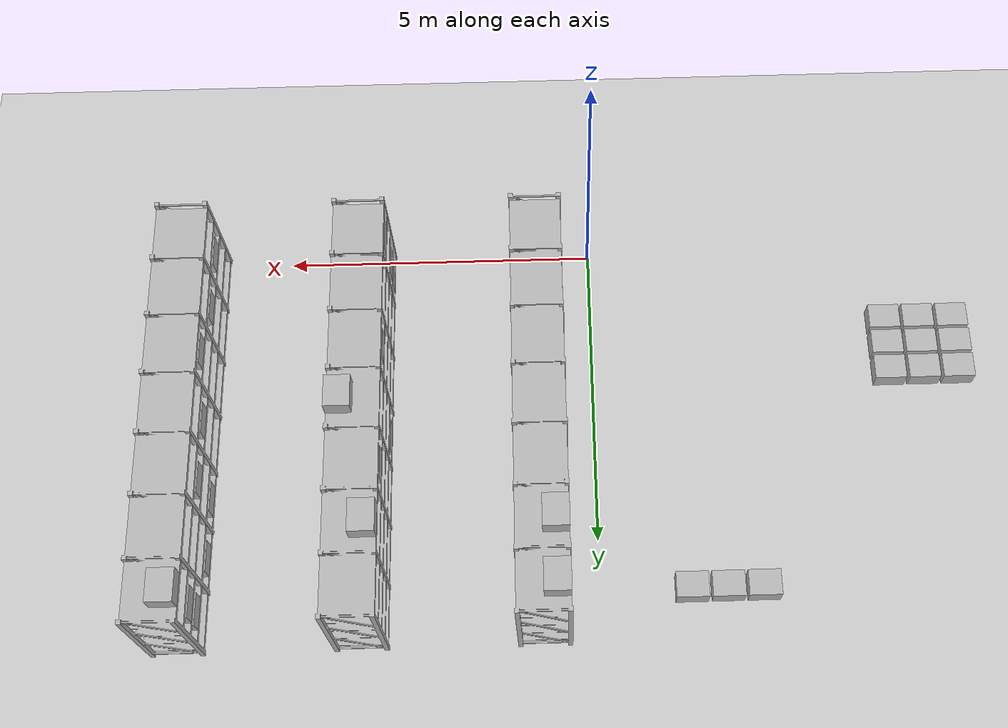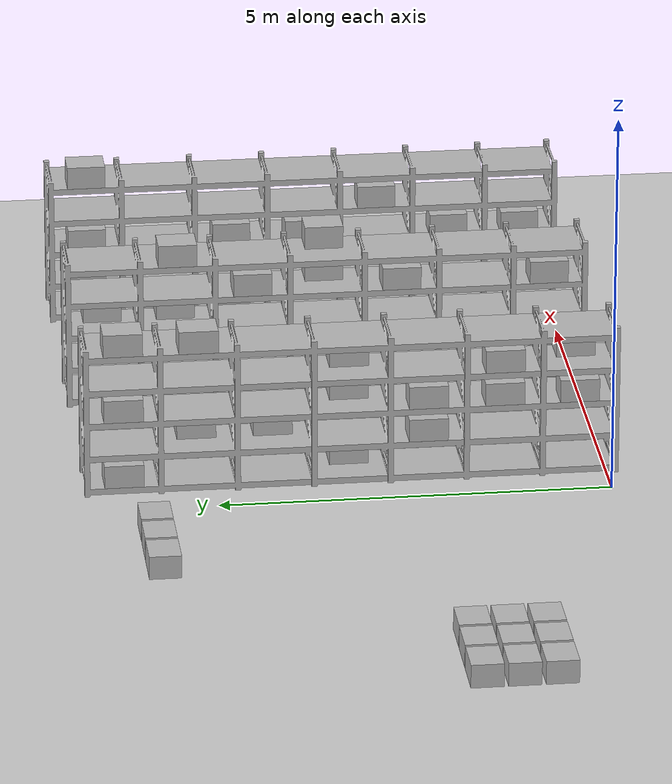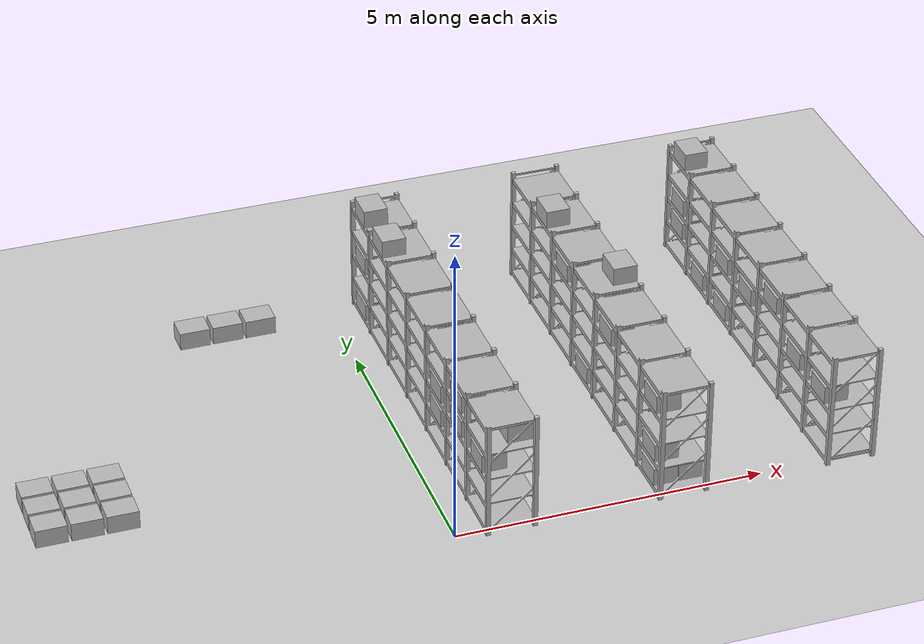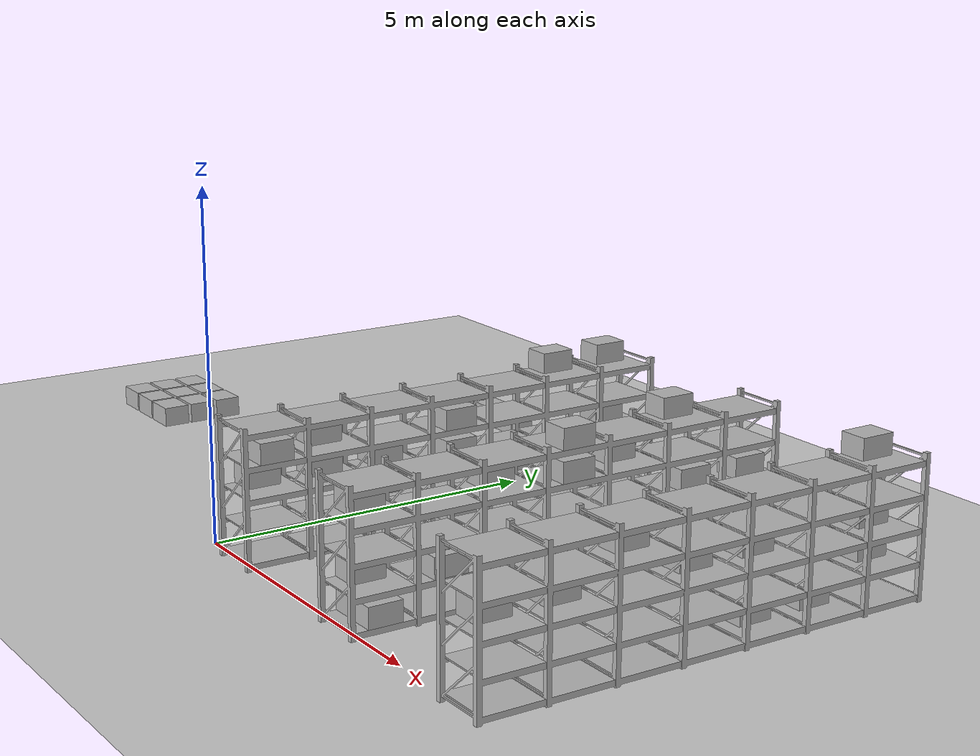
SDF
<sdf version="1.6">
 <world name="default">
  <model name="ground_plane">
   <static>1</static>
   <link name="link">
    <collision name="collision">
     <geometry><plane><normal>0 0 1</normal><size>100 100</size></plane></geometry>
     <surface><friction><ode><mu>100</mu><mu2>50</mu2></ode></friction></surface>
    </collision>
    <visual name="visual">
     <cast_shadows>0</cast_shadows>
     <geometry><plane><normal>0 0 1</normal><size>100 100</size></plane></geometry>
     <material>
      <script><uri>file://media/materials/scripts/gazebo.material</uri><name>Gazebo/Grey</name></script>
     </material>
    </visual>
   </link>
  </model>
  <include>
   <name>rack_A2_1</name>
   <uri>model://warehouse_rack_5lvl_7bay</uri>
   <pose>0.8599 3.2523 0 0 0 0</pose>
  </include>
  <model name="box_A_033">
   <pose>0.6549 0.3555 1.152 0 0 0</pose>
   <link name="link">
    <inertial>
     <mass>2.0</mass>
     <inertia><ixx>0.05667</ixx><iyy>0.04167</iyy><izz>0.06833</izz><ixy>0</ixy><ixz>0</ixz><iyz>0</iyz></inertia>
    </inertial>
    <collision name="collision">
     <geometry><box><size>0.4 0.5 0.3</size></box></geometry>
     <surface><friction><ode><mu>1.0</mu><mu2>1.0</mu2></ode></friction></surface>
    </collision>
    <visual name="visual">
     <cast_shadows>0</cast_shadows>
     <geometry><box><size>0.4 0.5 0.3</size></box></geometry>
     <material>
      <script>
       <uri>model://labeled_boxes/materials/scripts</uri>
       <uri>model://labeled_boxes/materials/textures</uri>
       <name>LabeledBox/A-033</name>
      </script>
     </material>
    </visual>
   </link>
  </model>
  <model name="box_A_034">
   <pose>1.0649 0.3555 1.602 0 0 0</pose>
   <link name="link">
    <inertial>
     <mass>2.0</mass>
     <inertia><ixx>0.05667</ixx><iyy>0.04167</iyy><izz>0.06833</izz><ixy>0</ixy><ixz>0</ixz><iyz>0</iyz></inertia>
    </inertial>
    <collision name="collision">
     <geometry><box><size>0.4 0.5 0.3</size></box></geometry>
     <surface><friction><ode><mu>1.0</mu><mu2>1.0</mu2></ode></friction></surface>
    </collision>
    <visual name="visual">
     <cast_shadows>0</cast_shadows>
     <geometry><box><size>0.4 0.5 0.3</size></box></geometry>
     <material>
      <script>
       <uri>model://labeled_boxes/materials/scripts</uri>
       <uri>model://labeled_boxes/materials/textures</uri>
       <name>LabeledBox/A-034</name>
      </script>
     </material>
    </visual>
   </link>
  </model>
  <model name="box_A_035">
   <pose>0.6549 1.3094 1.152 0 0 0</pose>
   <link name="link">
    <inertial>
     <mass>2.0</mass>
     <inertia><ixx>0.05667</ixx><iyy>0.04167</iyy><izz>0.06833</izz><ixy>0</ixy><ixz>0</ixz><iyz>0</iyz></inertia>
    </inertial>
    <collision name="collision">
     <geometry><box><size>0.4 0.5 0.3</size></box></geometry>
     <surface><friction><ode><mu>1.0</mu><mu2>1.0</mu2></ode></friction></surface>
    </collision>
    <visual name="visual">
     <cast_shadows>0</cast_shadows>
     <geometry><box><size>0.4 0.5 0.3</size></box></geometry>
     <material>
      <script>
       <uri>model://labeled_boxes/materials/scripts</uri>
       <uri>model://labeled_boxes/materials/textures</uri>
       <name>LabeledBox/A-035</name>
      </script>
     </material>
    </visual>
   </link>
  </model>
  <model name="box_A_036">
   <pose>0.6549 1.3094 1.602 0 0 0</pose>
   <link name="link">
    <inertial>
     <mass>2.0</mass>
     <inertia><ixx>0.05667</ixx><iyy>0.04167</iyy><izz>0.06833</izz><ixy>0</ixy><ixz>0</ixz><iyz>0</iyz></inertia>
    </inertial>
    <collision name="collision">
     <geometry><box><size>0.4 0.5 0.3</size></box></geometry>
     <surface><friction><ode><mu>1.0</mu><mu2>1.0</mu2></ode></friction></surface>
    </collision>
    <visual name="visual">
     <cast_shadows>0</cast_shadows>
     <geometry><box><size>0.4 0.5 0.3</size></box></geometry>
     <material>
      <script>
       <uri>model://labeled_boxes/materials/scripts</uri>
       <uri>model://labeled_boxes/materials/textures</uri>
       <name>LabeledBox/A-036</name>
      </script>
     </material>
    </visual>
   </link>
  </model>
  <model name="box_A_037">
   <pose>0.6549 2.2809 0.702 0 0 0</pose>
   <link name="link">
    <inertial>
     <mass>2.0</mass>
     <inertia><ixx>0.05667</ixx><iyy>0.04167</iyy><izz>0.06833</izz><ixy>0</ixy><ixz>0</ixz><iyz>0</iyz></inertia>
    </inertial>
    <collision name="collision">
     <geometry><box><size>0.4 0.5 0.3</size></box></geometry>
     <surface><friction><ode><mu>1.0</mu><mu2>1.0</mu2></ode></friction></surface>
    </collision>
    <visual name="visual">
     <cast_shadows>0</cast_shadows>
     <geometry><box><size>0.4 0.5 0.3</size></box></geometry>
     <material>
      <script>
       <uri>model://labeled_boxes/materials/scripts</uri>
       <uri>model://labeled_boxes/materials/textures</uri>
       <name>LabeledBox/A-037</name>
      </script>
     </material>
    </visual>
   </link>
  </model>
  <model name="box_A_038">
   <pose>0.6549 2.2809 1.152 0 0 0</pose>
   <link name="link">
    <inertial>
     <mass>2.0</mass>
     <inertia><ixx>0.05667</ixx><iyy>0.04167</iyy><izz>0.06833</izz><ixy>0</ixy><ixz>0</ixz><iyz>0</iyz></inertia>
    </inertial>
    <collision name="collision">
     <geometry><box><size>0.4 0.5 0.3</size></box></geometry>
     <surface><friction><ode><mu>1.0</mu><mu2>1.0</mu2></ode></friction></surface>
    </collision>
    <visual name="visual">
     <cast_shadows>0</cast_shadows>
     <geometry><box><size>0.4 0.5 0.3</size></box></geometry>
     <material>
      <script>
       <uri>model://labeled_boxes/materials/scripts</uri>
       <uri>model://labeled_boxes/materials/textures</uri>
       <name>LabeledBox/A-038</name>
      </script>
     </material>
    </visual>
   </link>
  </model>
  <model name="box_A_039">
   <pose>1.0649 3.2523 0.252 0 0 0</pose>
   <link name="link">
    <inertial>
     <mass>2.0</mass>
     <inertia><ixx>0.05667</ixx><iyy>0.04167</iyy><izz>0.06833</izz><ixy>0</ixy><ixz>0</ixz><iyz>0</iyz></inertia>
    </inertial>
    <collision name="collision">
     <geometry><box><size>0.4 0.5 0.3</size></box></geometry>
     <surface><friction><ode><mu>1.0</mu><mu2>1.0</mu2></ode></friction></surface>
    </collision>
    <visual name="visual">
     <cast_shadows>0</cast_shadows>
     <geometry><box><size>0.4 0.5 0.3</size></box></geometry>
     <material>
      <script>
       <uri>model://labeled_boxes/materials/scripts</uri>
       <uri>model://labeled_boxes/materials/textures</uri>
       <name>LabeledBox/A-039</name>
      </script>
     </material>
    </visual>
   </link>
  </model>
  <model name="box_A_040">
   <pose>1.0649 3.2523 1.152 0 0 0</pose>
   <link name="link">
    <inertial>
     <mass>2.0</mass>
     <inertia><ixx>0.05667</ixx><iyy>0.04167</iyy><izz>0.06833</izz><ixy>0</ixy><ixz>0</ixz><iyz>0</iyz></inertia>
    </inertial>
    <collision name="collision">
     <geometry><box><size>0.4 0.5 0.3</size></box></geometry>
     <surface><friction><ode><mu>1.0</mu><mu2>1.0</mu2></ode></friction></surface>
    </collision>
    <visual name="visual">
     <cast_shadows>0</cast_shadows>
     <geometry><box><size>0.4 0.5 0.3</size></box></geometry>
     <material>
      <script>
       <uri>model://labeled_boxes/materials/scripts</uri>
       <uri>model://labeled_boxes/materials/textures</uri>
       <name>LabeledBox/A-040</name>
      </script>
     </material>
    </visual>
   </link>
  </model>
  <model name="box_A_041">
   <pose>1.0649 3.2523 1.602 0 0 0</pose>
   <link name="link">
    <inertial>
     <mass>2.0</mass>
     <inertia><ixx>0.05667</ixx><iyy>0.04167</iyy><izz>0.06833</izz><ixy>0</ixy><ixz>0</ixz><iyz>0</iyz></inertia>
    </inertial>
    <collision name="collision">
     <geometry><box><size>0.4 0.5 0.3</size></box></geometry>
     <surface><friction><ode><mu>1.0</mu><mu2>1.0</mu2></ode></friction></surface>
    </collision>
    <visual name="visual">
     <cast_shadows>0</cast_shadows>
     <geometry><box><size>0.4 0.5 0.3</size></box></geometry>
     <material>
      <script>
       <uri>model://labeled_boxes/materials/scripts</uri>
       <uri>model://labeled_boxes/materials/textures</uri>
       <name>LabeledBox/A-041</name>
      </script>
     </material>
    </visual>
   </link>
  </model>
  <model name="box_A_042">
   <pose>1.0649 4.2237 0.702 0 0 0</pose>
   <link name="link">
    <inertial>
     <mass>2.0</mass>
     <inertia><ixx>0.05667</ixx><iyy>0.04167</iyy><izz>0.06833</izz><ixy>0</ixy><ixz>0</ixz><iyz>0</iyz></inertia>
    </inertial>
    <collision name="collision">
     <geometry><box><size>0.4 0.5 0.3</size></box></geometry>
     <surface><friction><ode><mu>1.0</mu><mu2>1.0</mu2></ode></friction></surface>
    </collision>
    <visual name="visual">
     <cast_shadows>0</cast_shadows>
     <geometry><box><size>0.4 0.5 0.3</size></box></geometry>
     <material>
      <script>
       <uri>model://labeled_boxes/materials/scripts</uri>
       <uri>model://labeled_boxes/materials/textures</uri>
       <name>LabeledBox/A-042</name>
      </script>
     </material>
    </visual>
   </link>
  </model>
  <model name="box_A_043">
   <pose>1.0649 5.1951 0.702 0 0 0</pose>
   <link name="link">
    <inertial>
     <mass>2.0</mass>
     <inertia><ixx>0.05667</ixx><iyy>0.04167</iyy><izz>0.06833</izz><ixy>0</ixy><ixz>0</ixz><iyz>0</iyz></inertia>
    </inertial>
    <collision name="collision">
     <geometry><box><size>0.4 0.5 0.3</size></box></geometry>
     <surface><friction><ode><mu>1.0</mu><mu2>1.0</mu2></ode></friction></surface>
    </collision>
    <visual name="visual">
     <cast_shadows>0</cast_shadows>
     <geometry><box><size>0.4 0.5 0.3</size></box></geometry>
     <material>
      <script>
       <uri>model://labeled_boxes/materials/scripts</uri>
       <uri>model://labeled_boxes/materials/textures</uri>
       <name>LabeledBox/A-043</name>
      </script>
     </material>
    </visual>
   </link>
  </model>
  <model name="box_A_044">
   <pose>0.6549 5.1951 2.052 0 0 0</pose>
   <link name="link">
    <inertial>
     <mass>2.0</mass>
     <inertia><ixx>0.05667</ixx><iyy>0.04167</iyy><izz>0.06833</izz><ixy>0</ixy><ixz>0</ixz><iyz>0</iyz></inertia>
    </inertial>
    <collision name="collision">
     <geometry><box><size>0.4 0.5 0.3</size></box></geometry>
     <surface><friction><ode><mu>1.0</mu><mu2>1.0</mu2></ode></friction></surface>
    </collision>
    <visual name="visual">
     <cast_shadows>0</cast_shadows>
     <geometry><box><size>0.4 0.5 0.3</size></box></geometry>
     <material>
      <script>
       <uri>model://labeled_boxes/materials/scripts</uri>
       <uri>model://labeled_boxes/materials/textures</uri>
       <name>LabeledBox/A-044</name>
      </script>
     </material>
    </visual>
   </link>
  </model>
  <model name="box_A_045">
   <pose>0.6549 6.1491 0.252 0 0 0</pose>
   <link name="link">
    <inertial>
     <mass>2.0</mass>
     <inertia><ixx>0.05667</ixx><iyy>0.04167</iyy><izz>0.06833</izz><ixy>0</ixy><ixz>0</ixz><iyz>0</iyz></inertia>
    </inertial>
    <collision name="collision">
     <geometry><box><size>0.4 0.5 0.3</size></box></geometry>
     <surface><friction><ode><mu>1.0</mu><mu2>1.0</mu2></ode></friction></surface>
    </collision>
    <visual name="visual">
     <cast_shadows>0</cast_shadows>
     <geometry><box><size>0.4 0.5 0.3</size></box></geometry>
     <material>
      <script>
       <uri>model://labeled_boxes/materials/scripts</uri>
       <uri>model://labeled_boxes/materials/textures</uri>
       <name>LabeledBox/A-045</name>
      </script>
     </material>
    </visual>
   </link>
  </model>
  <model name="box_A_046">
   <pose>0.6549 6.1491 1.152 0 0 0</pose>
   <link name="link">
    <inertial>
     <mass>2.0</mass>
     <inertia><ixx>0.05667</ixx><iyy>0.04167</iyy><izz>0.06833</izz><ixy>0</ixy><ixz>0</ixz><iyz>0</iyz></inertia>
    </inertial>
    <collision name="collision">
     <geometry><box><size>0.4 0.5 0.3</size></box></geometry>
     <surface><friction><ode><mu>1.0</mu><mu2>1.0</mu2></ode></friction></surface>
    </collision>
    <visual name="visual">
     <cast_shadows>0</cast_shadows>
     <geometry><box><size>0.4 0.5 0.3</size></box></geometry>
     <material>
      <script>
       <uri>model://labeled_boxes/materials/scripts</uri>
       <uri>model://labeled_boxes/materials/textures</uri>
       <name>LabeledBox/A-046</name>
      </script>
     </material>
    </visual>
   </link>
  </model>
  <model name="box_A_047">
   <pose>0.6549 6.1491 2.052 0 0 0</pose>
   <link name="link">
    <inertial>
     <mass>2.0</mass>
     <inertia><ixx>0.05667</ixx><iyy>0.04167</iyy><izz>0.06833</izz><ixy>0</ixy><ixz>0</ixz><iyz>0</iyz></inertia>
    </inertial>
    <collision name="collision">
     <geometry><box><size>0.4 0.5 0.3</size></box></geometry>
     <surface><friction><ode><mu>1.0</mu><mu2>1.0</mu2></ode></friction></surface>
    </collision>
    <visual name="visual">
     <cast_shadows>0</cast_shadows>
     <geometry><box><size>0.4 0.5 0.3</size></box></geometry>
     <material>
      <script>
       <uri>model://labeled_boxes/materials/scripts</uri>
       <uri>model://labeled_boxes/materials/textures</uri>
       <name>LabeledBox/A-047</name>
      </script>
     </material>
    </visual>
   </link>
  </model>
  <include>
   <name>rack_A3_1</name>
   <uri>model://warehouse_rack_5lvl_7bay</uri>
   <pose>3.6599 3.2523 0 0 0 0</pose>
  </include>
  <model name="box_A_064">
   <pose>3.4549 0.3555 0.252 0 0 0</pose>
   <link name="link">
    <inertial>
     <mass>2.0</mass>
     <inertia><ixx>0.05667</ixx><iyy>0.04167</iyy><izz>0.06833</izz><ixy>0</ixy><ixz>0</ixz><iyz>0</iyz></inertia>
    </inertial>
    <collision name="collision">
     <geometry><box><size>0.4 0.5 0.3</size></box></geometry>
     <surface><friction><ode><mu>1.0</mu><mu2>1.0</mu2></ode></friction></surface>
    </collision>
    <visual name="visual">
     <cast_shadows>0</cast_shadows>
     <geometry><box><size>0.4 0.5 0.3</size></box></geometry>
     <material>
      <script>
       <uri>model://labeled_boxes/materials/scripts</uri>
       <uri>model://labeled_boxes/materials/textures</uri>
       <name>LabeledBox/A-064</name>
      </script>
     </material>
    </visual>
   </link>
  </model>
  <model name="box_A_065">
   <pose>3.8649 0.3555 0.252 0 0 0</pose>
   <link name="link">
    <inertial>
     <mass>2.0</mass>
     <inertia><ixx>0.05667</ixx><iyy>0.04167</iyy><izz>0.06833</izz><ixy>0</ixy><ixz>0</ixz><iyz>0</iyz></inertia>
    </inertial>
    <collision name="collision">
     <geometry><box><size>0.4 0.5 0.3</size></box></geometry>
     <surface><friction><ode><mu>1.0</mu><mu2>1.0</mu2></ode></friction></surface>
    </collision>
    <visual name="visual">
     <cast_shadows>0</cast_shadows>
     <geometry><box><size>0.4 0.5 0.3</size></box></geometry>
     <material>
      <script>
       <uri>model://labeled_boxes/materials/scripts</uri>
       <uri>model://labeled_boxes/materials/textures</uri>
       <name>LabeledBox/A-065</name>
      </script>
     </material>
    </visual>
   </link>
  </model>
  <model name="box_A_066">
   <pose>3.4549 0.3555 0.702 0 0 0</pose>
   <link name="link">
    <inertial>
     <mass>2.0</mass>
     <inertia><ixx>0.05667</ixx><iyy>0.04167</iyy><izz>0.06833</izz><ixy>0</ixy><ixz>0</ixz><iyz>0</iyz></inertia>
    </inertial>
    <collision name="collision">
     <geometry><box><size>0.4 0.5 0.3</size></box></geometry>
     <surface><friction><ode><mu>1.0</mu><mu2>1.0</mu2></ode></friction></surface>
    </collision>
    <visual name="visual">
     <cast_shadows>0</cast_shadows>
     <geometry><box><size>0.4 0.5 0.3</size></box></geometry>
     <material>
      <script>
       <uri>model://labeled_boxes/materials/scripts</uri>
       <uri>model://labeled_boxes/materials/textures</uri>
       <name>LabeledBox/A-066</name>
      </script>
     </material>
    </visual>
   </link>
  </model>
  <model name="box_A_067">
   <pose>3.4549 0.3555 1.602 0 0 0</pose>
   <link name="link">
    <inertial>
     <mass>2.0</mass>
     <inertia><ixx>0.05667</ixx><iyy>0.04167</iyy><izz>0.06833</izz><ixy>0</ixy><ixz>0</ixz><iyz>0</iyz></inertia>
    </inertial>
    <collision name="collision">
     <geometry><box><size>0.4 0.5 0.3</size></box></geometry>
     <surface><friction><ode><mu>1.0</mu><mu2>1.0</mu2></ode></friction></surface>
    </collision>
    <visual name="visual">
     <cast_shadows>0</cast_shadows>
     <geometry><box><size>0.4 0.5 0.3</size></box></geometry>
     <material>
      <script>
       <uri>model://labeled_boxes/materials/scripts</uri>
       <uri>model://labeled_boxes/materials/textures</uri>
       <name>LabeledBox/A-067</name>
      </script>
     </material>
    </visual>
   </link>
  </model>
  <model name="box_A_068">
   <pose>3.8649 1.3094 0.702 0 0 0</pose>
   <link name="link">
    <inertial>
     <mass>2.0</mass>
     <inertia><ixx>0.05667</ixx><iyy>0.04167</iyy><izz>0.06833</izz><ixy>0</ixy><ixz>0</ixz><iyz>0</iyz></inertia>
    </inertial>
    <collision name="collision">
     <geometry><box><size>0.4 0.5 0.3</size></box></geometry>
     <surface><friction><ode><mu>1.0</mu><mu2>1.0</mu2></ode></friction></surface>
    </collision>
    <visual name="visual">
     <cast_shadows>0</cast_shadows>
     <geometry><box><size>0.4 0.5 0.3</size></box></geometry>
     <material>
      <script>
       <uri>model://labeled_boxes/materials/scripts</uri>
       <uri>model://labeled_boxes/materials/textures</uri>
       <name>LabeledBox/A-068</name>
      </script>
     </material>
    </visual>
   </link>
  </model>
  <model name="box_A_069">
   <pose>3.8649 2.2809 0.252 0 0 0</pose>
   <link name="link">
    <inertial>
     <mass>2.0</mass>
     <inertia><ixx>0.05667</ixx><iyy>0.04167</iyy><izz>0.06833</izz><ixy>0</ixy><ixz>0</ixz><iyz>0</iyz></inertia>
    </inertial>
    <collision name="collision">
     <geometry><box><size>0.4 0.5 0.3</size></box></geometry>
     <surface><friction><ode><mu>1.0</mu><mu2>1.0</mu2></ode></friction></surface>
    </collision>
    <visual name="visual">
     <cast_shadows>0</cast_shadows>
     <geometry><box><size>0.4 0.5 0.3</size></box></geometry>
     <material>
      <script>
       <uri>model://labeled_boxes/materials/scripts</uri>
       <uri>model://labeled_boxes/materials/textures</uri>
       <name>LabeledBox/A-069</name>
      </script>
     </material>
    </visual>
   </link>
  </model>
  <model name="box_A_070">
   <pose>3.4549 2.2809 1.602 0 0 0</pose>
   <link name="link">
    <inertial>
     <mass>2.0</mass>
     <inertia><ixx>0.05667</ixx><iyy>0.04167</iyy><izz>0.06833</izz><ixy>0</ixy><ixz>0</ixz><iyz>0</iyz></inertia>
    </inertial>
    <collision name="collision">
     <geometry><box><size>0.4 0.5 0.3</size></box></geometry>
     <surface><friction><ode><mu>1.0</mu><mu2>1.0</mu2></ode></friction></surface>
    </collision>
    <visual name="visual">
     <cast_shadows>0</cast_shadows>
     <geometry><box><size>0.4 0.5 0.3</size></box></geometry>
     <material>
      <script>
       <uri>model://labeled_boxes/materials/scripts</uri>
       <uri>model://labeled_boxes/materials/textures</uri>
       <name>LabeledBox/A-070</name>
      </script>
     </material>
    </visual>
   </link>
  </model>
  <model name="box_A_071">
   <pose>3.4549 3.2523 0.252 0 0 0</pose>
   <link name="link">
    <inertial>
     <mass>2.0</mass>
     <inertia><ixx>0.05667</ixx><iyy>0.04167</iyy><izz>0.06833</izz><ixy>0</ixy><ixz>0</ixz><iyz>0</iyz></inertia>
    </inertial>
    <collision name="collision">
     <geometry><box><size>0.4 0.5 0.3</size></box></geometry>
     <surface><friction><ode><mu>1.0</mu><mu2>1.0</mu2></ode></friction></surface>
    </collision>
    <visual name="visual">
     <cast_shadows>0</cast_shadows>
     <geometry><box><size>0.4 0.5 0.3</size></box></geometry>
     <material>
      <script>
       <uri>model://labeled_boxes/materials/scripts</uri>
       <uri>model://labeled_boxes/materials/textures</uri>
       <name>LabeledBox/A-071</name>
      </script>
     </material>
    </visual>
   </link>
  </model>
  <model name="box_A_072">
   <pose>3.8649 3.2523 1.602 0 0 0</pose>
   <link name="link">
    <inertial>
     <mass>2.0</mass>
     <inertia><ixx>0.05667</ixx><iyy>0.04167</iyy><izz>0.06833</izz><ixy>0</ixy><ixz>0</ixz><iyz>0</iyz></inertia>
    </inertial>
    <collision name="collision">
     <geometry><box><size>0.4 0.5 0.3</size></box></geometry>
     <surface><friction><ode><mu>1.0</mu><mu2>1.0</mu2></ode></friction></surface>
    </collision>
    <visual name="visual">
     <cast_shadows>0</cast_shadows>
     <geometry><box><size>0.4 0.5 0.3</size></box></geometry>
     <material>
      <script>
       <uri>model://labeled_boxes/materials/scripts</uri>
       <uri>model://labeled_boxes/materials/textures</uri>
       <name>LabeledBox/A-072</name>
      </script>
     </material>
    </visual>
   </link>
  </model>
  <model name="box_A_073">
   <pose>3.8649 3.2523 2.052 0 0 0</pose>
   <link name="link">
    <inertial>
     <mass>2.0</mass>
     <inertia><ixx>0.05667</ixx><iyy>0.04167</iyy><izz>0.06833</izz><ixy>0</ixy><ixz>0</ixz><iyz>0</iyz></inertia>
    </inertial>
    <collision name="collision">
     <geometry><box><size>0.4 0.5 0.3</size></box></geometry>
     <surface><friction><ode><mu>1.0</mu><mu2>1.0</mu2></ode></friction></surface>
    </collision>
    <visual name="visual">
     <cast_shadows>0</cast_shadows>
     <geometry><box><size>0.4 0.5 0.3</size></box></geometry>
     <material>
      <script>
       <uri>model://labeled_boxes/materials/scripts</uri>
       <uri>model://labeled_boxes/materials/textures</uri>
       <name>LabeledBox/A-073</name>
      </script>
     </material>
    </visual>
   </link>
  </model>
  <model name="box_A_074">
   <pose>3.4549 4.2237 1.602 0 0 0</pose>
   <link name="link">
    <inertial>
     <mass>2.0</mass>
     <inertia><ixx>0.05667</ixx><iyy>0.04167</iyy><izz>0.06833</izz><ixy>0</ixy><ixz>0</ixz><iyz>0</iyz></inertia>
    </inertial>
    <collision name="collision">
     <geometry><box><size>0.4 0.5 0.3</size></box></geometry>
     <surface><friction><ode><mu>1.0</mu><mu2>1.0</mu2></ode></friction></surface>
    </collision>
    <visual name="visual">
     <cast_shadows>0</cast_shadows>
     <geometry><box><size>0.4 0.5 0.3</size></box></geometry>
     <material>
      <script>
       <uri>model://labeled_boxes/materials/scripts</uri>
       <uri>model://labeled_boxes/materials/textures</uri>
       <name>LabeledBox/A-074</name>
      </script>
     </material>
    </visual>
   </link>
  </model>
  <model name="box_A_075">
   <pose>3.8649 5.1951 0.252 0 0 0</pose>
   <link name="link">
    <inertial>
     <mass>2.0</mass>
     <inertia><ixx>0.05667</ixx><iyy>0.04167</iyy><izz>0.06833</izz><ixy>0</ixy><ixz>0</ixz><iyz>0</iyz></inertia>
    </inertial>
    <collision name="collision">
     <geometry><box><size>0.4 0.5 0.3</size></box></geometry>
     <surface><friction><ode><mu>1.0</mu><mu2>1.0</mu2></ode></friction></surface>
    </collision>
    <visual name="visual">
     <cast_shadows>0</cast_shadows>
     <geometry><box><size>0.4 0.5 0.3</size></box></geometry>
     <material>
      <script>
       <uri>model://labeled_boxes/materials/scripts</uri>
       <uri>model://labeled_boxes/materials/textures</uri>
       <name>LabeledBox/A-075</name>
      </script>
     </material>
    </visual>
   </link>
  </model>
  <model name="box_A_076">
   <pose>3.8649 5.1951 0.702 0 0 0</pose>
   <link name="link">
    <inertial>
     <mass>2.0</mass>
     <inertia><ixx>0.05667</ixx><iyy>0.04167</iyy><izz>0.06833</izz><ixy>0</ixy><ixz>0</ixz><iyz>0</iyz></inertia>
    </inertial>
    <collision name="collision">
     <geometry><box><size>0.4 0.5 0.3</size></box></geometry>
     <surface><friction><ode><mu>1.0</mu><mu2>1.0</mu2></ode></friction></surface>
    </collision>
    <visual name="visual">
     <cast_shadows>0</cast_shadows>
     <geometry><box><size>0.4 0.5 0.3</size></box></geometry>
     <material>
      <script>
       <uri>model://labeled_boxes/materials/scripts</uri>
       <uri>model://labeled_boxes/materials/textures</uri>
       <name>LabeledBox/A-076</name>
      </script>
     </material>
    </visual>
   </link>
  </model>
  <model name="box_A_077">
   <pose>3.8649 5.1951 1.152 0 0 0</pose>
   <link name="link">
    <inertial>
     <mass>2.0</mass>
     <inertia><ixx>0.05667</ixx><iyy>0.04167</iyy><izz>0.06833</izz><ixy>0</ixy><ixz>0</ixz><iyz>0</iyz></inertia>
    </inertial>
    <collision name="collision">
     <geometry><box><size>0.4 0.5 0.3</size></box></geometry>
     <surface><friction><ode><mu>1.0</mu><mu2>1.0</mu2></ode></friction></surface>
    </collision>
    <visual name="visual">
     <cast_shadows>0</cast_shadows>
     <geometry><box><size>0.4 0.5 0.3</size></box></geometry>
     <material>
      <script>
       <uri>model://labeled_boxes/materials/scripts</uri>
       <uri>model://labeled_boxes/materials/textures</uri>
       <name>LabeledBox/A-077</name>
      </script>
     </material>
    </visual>
   </link>
  </model>
  <model name="box_A_078">
   <pose>3.4549 5.1951 2.052 0 0 0</pose>
   <link name="link">
    <inertial>
     <mass>2.0</mass>
     <inertia><ixx>0.05667</ixx><iyy>0.04167</iyy><izz>0.06833</izz><ixy>0</ixy><ixz>0</ixz><iyz>0</iyz></inertia>
    </inertial>
    <collision name="collision">
     <geometry><box><size>0.4 0.5 0.3</size></box></geometry>
     <surface><friction><ode><mu>1.0</mu><mu2>1.0</mu2></ode></friction></surface>
    </collision>
    <visual name="visual">
     <cast_shadows>0</cast_shadows>
     <geometry><box><size>0.4 0.5 0.3</size></box></geometry>
     <material>
      <script>
       <uri>model://labeled_boxes/materials/scripts</uri>
       <uri>model://labeled_boxes/materials/textures</uri>
       <name>LabeledBox/A-078</name>
      </script>
     </material>
    </visual>
   </link>
  </model>
  <model name="box_A_079">
   <pose>3.8649 6.1491 0.702 0 0 0</pose>
   <link name="link">
    <inertial>
     <mass>2.0</mass>
     <inertia><ixx>0.05667</ixx><iyy>0.04167</iyy><izz>0.06833</izz><ixy>0</ixy><ixz>0</ixz><iyz>0</iyz></inertia>
    </inertial>
    <collision name="collision">
     <geometry><box><size>0.4 0.5 0.3</size></box></geometry>
     <surface><friction><ode><mu>1.0</mu><mu2>1.0</mu2></ode></friction></surface>
    </collision>
    <visual name="visual">
     <cast_shadows>0</cast_shadows>
     <geometry><box><size>0.4 0.5 0.3</size></box></geometry>
     <material>
      <script>
       <uri>model://labeled_boxes/materials/scripts</uri>
       <uri>model://labeled_boxes/materials/textures</uri>
       <name>LabeledBox/A-079</name>
      </script>
     </material>
    </visual>
   </link>
  </model>
  <model name="box_A_080">
   <pose>3.8649 6.1491 1.152 0 0 0</pose>
   <link name="link">
    <inertial>
     <mass>2.0</mass>
     <inertia><ixx>0.05667</ixx><iyy>0.04167</iyy><izz>0.06833</izz><ixy>0</ixy><ixz>0</ixz><iyz>0</iyz></inertia>
    </inertial>
    <collision name="collision">
     <geometry><box><size>0.4 0.5 0.3</size></box></geometry>
     <surface><friction><ode><mu>1.0</mu><mu2>1.0</mu2></ode></friction></surface>
    </collision>
    <visual name="visual">
     <cast_shadows>0</cast_shadows>
     <geometry><box><size>0.4 0.5 0.3</size></box></geometry>
     <material>
      <script>
       <uri>model://labeled_boxes/materials/scripts</uri>
       <uri>model://labeled_boxes/materials/textures</uri>
       <name>LabeledBox/A-080</name>
      </script>
     </material>
    </visual>
   </link>
  </model>
  <include>
   <name>rack_A4_1</name>
   <uri>model://warehouse_rack_5lvl_7bay</uri>
   <pose>6.4599 3.2523 0 0 0 0</pose>
  </include>
  <model name="box_A_090">
   <pose>6.2549 0.3555 1.152 0 0 0</pose>
   <link name="link">
    <inertial>
     <mass>2.0</mass>
     <inertia><ixx>0.05667</ixx><iyy>0.04167</iyy><izz>0.06833</izz><ixy>0</ixy><ixz>0</ixz><iyz>0</iyz></inertia>
    </inertial>
    <collision name="collision">
     <geometry><box><size>0.4 0.5 0.3</size></box></geometry>
     <surface><friction><ode><mu>1.0</mu><mu2>1.0</mu2></ode></friction></surface>
    </collision>
    <visual name="visual">
     <cast_shadows>0</cast_shadows>
     <geometry><box><size>0.4 0.5 0.3</size></box></geometry>
     <material>
      <script>
       <uri>model://labeled_boxes/materials/scripts</uri>
       <uri>model://labeled_boxes/materials/textures</uri>
       <name>LabeledBox/A-090</name>
      </script>
     </material>
    </visual>
   </link>
  </model>
  <model name="box_A_094">
   <pose>6.2549 1.3094 1.152 0 0 0</pose>
   <link name="link">
    <inertial>
     <mass>2.0</mass>
     <inertia><ixx>0.05667</ixx><iyy>0.04167</iyy><izz>0.06833</izz><ixy>0</ixy><ixz>0</ixz><iyz>0</iyz></inertia>
    </inertial>
    <collision name="collision">
     <geometry><box><size>0.4 0.5 0.3</size></box></geometry>
     <surface><friction><ode><mu>1.0</mu><mu2>1.0</mu2></ode></friction></surface>
    </collision>
    <visual name="visual">
     <cast_shadows>0</cast_shadows>
     <geometry><box><size>0.4 0.5 0.3</size></box></geometry>
     <material>
      <script>
       <uri>model://labeled_boxes/materials/scripts</uri>
       <uri>model://labeled_boxes/materials/textures</uri>
       <name>LabeledBox/A-094</name>
      </script>
     </material>
    </visual>
   </link>
  </model>
  <model name="box_A_097">
   <pose>6.2549 2.2809 1.602 0 0 0</pose>
   <link name="link">
    <inertial>
     <mass>2.0</mass>
     <inertia><ixx>0.05667</ixx><iyy>0.04167</iyy><izz>0.06833</izz><ixy>0</ixy><ixz>0</ixz><iyz>0</iyz></inertia>
    </inertial>
    <collision name="collision">
     <geometry><box><size>0.4 0.5 0.3</size></box></geometry>
     <surface><friction><ode><mu>1.0</mu><mu2>1.0</mu2></ode></friction></surface>
    </collision>
    <visual name="visual">
     <cast_shadows>0</cast_shadows>
     <geometry><box><size>0.4 0.5 0.3</size></box></geometry>
     <material>
      <script>
       <uri>model://labeled_boxes/materials/scripts</uri>
       <uri>model://labeled_boxes/materials/textures</uri>
       <name>LabeledBox/A-097</name>
      </script>
     </material>
    </visual>
   </link>
  </model>
  <model name="box_A_099">
   <pose>6.2549 3.2523 1.152 0 0 0</pose>
   <link name="link">
    <inertial>
     <mass>2.0</mass>
     <inertia><ixx>0.05667</ixx><iyy>0.04167</iyy><izz>0.06833</izz><ixy>0</ixy><ixz>0</ixz><iyz>0</iyz></inertia>
    </inertial>
    <collision name="collision">
     <geometry><box><size>0.4 0.5 0.3</size></box></geometry>
     <surface><friction><ode><mu>1.0</mu><mu2>1.0</mu2></ode></friction></surface>
    </collision>
    <visual name="visual">
     <cast_shadows>0</cast_shadows>
     <geometry><box><size>0.4 0.5 0.3</size></box></geometry>
     <material>
      <script>
       <uri>model://labeled_boxes/materials/scripts</uri>
       <uri>model://labeled_boxes/materials/textures</uri>
       <name>LabeledBox/A-099</name>
      </script>
     </material>
    </visual>
   </link>
  </model>
  <model name="box_A_100">
   <pose>6.2549 4.2237 0.252 0 0 0</pose>
   <link name="link">
    <inertial>
     <mass>2.0</mass>
     <inertia><ixx>0.05667</ixx><iyy>0.04167</iyy><izz>0.06833</izz><ixy>0</ixy><ixz>0</ixz><iyz>0</iyz></inertia>
    </inertial>
    <collision name="collision">
     <geometry><box><size>0.4 0.5 0.3</size></box></geometry>
     <surface><friction><ode><mu>1.0</mu><mu2>1.0</mu2></ode></friction></surface>
    </collision>
    <visual name="visual">
     <cast_shadows>0</cast_shadows>
     <geometry><box><size>0.4 0.5 0.3</size></box></geometry>
     <material>
      <script>
       <uri>model://labeled_boxes/materials/scripts</uri>
       <uri>model://labeled_boxes/materials/textures</uri>
       <name>LabeledBox/A-100</name>
      </script>
     </material>
    </visual>
   </link>
  </model>
  <model name="box_A_101">
   <pose>6.2549 4.2237 1.152 0 0 0</pose>
   <link name="link">
    <inertial>
     <mass>2.0</mass>
     <inertia><ixx>0.05667</ixx><iyy>0.04167</iyy><izz>0.06833</izz><ixy>0</ixy><ixz>0</ixz><iyz>0</iyz></inertia>
    </inertial>
    <collision name="collision">
     <geometry><box><size>0.4 0.5 0.3</size></box></geometry>
     <surface><friction><ode><mu>1.0</mu><mu2>1.0</mu2></ode></friction></surface>
    </collision>
    <visual name="visual">
     <cast_shadows>0</cast_shadows>
     <geometry><box><size>0.4 0.5 0.3</size></box></geometry>
     <material>
      <script>
       <uri>model://labeled_boxes/materials/scripts</uri>
       <uri>model://labeled_boxes/materials/textures</uri>
       <name>LabeledBox/A-101</name>
      </script>
     </material>
    </visual>
   </link>
  </model>
  <model name="box_A_102">
   <pose>6.2549 5.1951 0.252 0 0 0</pose>
   <link name="link">
    <inertial>
     <mass>2.0</mass>
     <inertia><ixx>0.05667</ixx><iyy>0.04167</iyy><izz>0.06833</izz><ixy>0</ixy><ixz>0</ixz><iyz>0</iyz></inertia>
    </inertial>
    <collision name="collision">
     <geometry><box><size>0.4 0.5 0.3</size></box></geometry>
     <surface><friction><ode><mu>1.0</mu><mu2>1.0</mu2></ode></friction></surface>
    </collision>
    <visual name="visual">
     <cast_shadows>0</cast_shadows>
     <geometry><box><size>0.4 0.5 0.3</size></box></geometry>
     <material>
      <script>
       <uri>model://labeled_boxes/materials/scripts</uri>
       <uri>model://labeled_boxes/materials/textures</uri>
       <name>LabeledBox/A-102</name>
      </script>
     </material>
    </visual>
   </link>
  </model>
  <model name="box_A_106">
   <pose>6.2549 6.1491 0.702 0 0 0</pose>
   <link name="link">
    <inertial>
     <mass>2.0</mass>
     <inertia><ixx>0.05667</ixx><iyy>0.04167</iyy><izz>0.06833</izz><ixy>0</ixy><ixz>0</ixz><iyz>0</iyz></inertia>
    </inertial>
    <collision name="collision">
     <geometry><box><size>0.4 0.5 0.3</size></box></geometry>
     <surface><friction><ode><mu>1.0</mu><mu2>1.0</mu2></ode></friction></surface>
    </collision>
    <visual name="visual">
     <cast_shadows>0</cast_shadows>
     <geometry><box><size>0.4 0.5 0.3</size></box></geometry>
     <material>
      <script>
       <uri>model://labeled_boxes/materials/scripts</uri>
       <uri>model://labeled_boxes/materials/textures</uri>
       <name>LabeledBox/A-106</name>
      </script>
     </material>
    </visual>
   </link>
  </model>
  <model name="box_A_107">
   <pose>6.2549 6.1491 1.152 0 0 0</pose>
   <link name="link">
    <inertial>
     <mass>2.0</mass>
     <inertia><ixx>0.05667</ixx><iyy>0.04167</iyy><izz>0.06833</izz><ixy>0</ixy><ixz>0</ixz><iyz>0</iyz></inertia>
    </inertial>
    <collision name="collision">
     <geometry><box><size>0.4 0.5 0.3</size></box></geometry>
     <surface><friction><ode><mu>1.0</mu><mu2>1.0</mu2></ode></friction></surface>
    </collision>
    <visual name="visual">
     <cast_shadows>0</cast_shadows>
     <geometry><box><size>0.4 0.5 0.3</size></box></geometry>
     <material>
      <script>
       <uri>model://labeled_boxes/materials/scripts</uri>
       <uri>model://labeled_boxes/materials/textures</uri>
       <name>LabeledBox/A-107</name>
      </script>
     </material>
    </visual>
   </link>
  </model>
  <model name="box_A_109">
   <pose>6.2549 6.1491 2.052 0 0 0</pose>
   <link name="link">
    <inertial>
     <mass>2.0</mass>
     <inertia><ixx>0.05667</ixx><iyy>0.04167</iyy><izz>0.06833</izz><ixy>0</ixy><ixz>0</ixz><iyz>0</iyz></inertia>
    </inertial>
    <collision name="collision">
     <geometry><box><size>0.4 0.5 0.3</size></box></geometry>
     <surface><friction><ode><mu>1.0</mu><mu2>1.0</mu2></ode></friction></surface>
    </collision>
    <visual name="visual">
     <cast_shadows>0</cast_shadows>
     <geometry><box><size>0.4 0.5 0.3</size></box></geometry>
     <material>
      <script>
       <uri>model://labeled_boxes/materials/scripts</uri>
       <uri>model://labeled_boxes/materials/textures</uri>
       <name>LabeledBox/A-109</name>
      </script>
     </material>
    </visual>
   </link>
  </model>
  <model name="box_A_147">
   <pose>-2.4882 5.9211 0.4792 0 0 1.5708</pose>
   <link name="link">
    <inertial>
     <mass>2.0</mass>
     <inertia><ixx>0.05667</ixx><iyy>0.04167</iyy><izz>0.06833</izz><ixy>0</ixy><ixz>0</ixz><iyz>0</iyz></inertia>
    </inertial>
    <collision name="collision">
     <geometry><box><size>0.4 0.5 0.3</size></box></geometry>
     <surface><friction><ode><mu>1.0</mu><mu2>1.0</mu2></ode></friction></surface>
    </collision>
    <visual name="visual">
     <cast_shadows>0</cast_shadows>
     <geometry><box><size>0.4 0.5 0.3</size></box></geometry>
     <material>
      <script>
       <uri>model://labeled_boxes/materials/scripts</uri>
       <uri>model://labeled_boxes/materials/textures</uri>
       <name>LabeledBox/A-147</name>
      </script>
     </material>
    </visual>
   </link>
  </model>
  <model name="box_A_150">
   <pose>-1.9382 5.9211 0.4792 0 0 1.5708</pose>
   <link name="link">
    <inertial>
     <mass>2.0</mass>
     <inertia><ixx>0.05667</ixx><iyy>0.04167</iyy><izz>0.06833</izz><ixy>0</ixy><ixz>0</ixz><iyz>0</iyz></inertia>
    </inertial>
    <collision name="collision">
     <geometry><box><size>0.4 0.5 0.3</size></box></geometry>
     <surface><friction><ode><mu>1.0</mu><mu2>1.0</mu2></ode></friction></surface>
    </collision>
    <visual name="visual">
     <cast_shadows>0</cast_shadows>
     <geometry><box><size>0.4 0.5 0.3</size></box></geometry>
     <material>
      <script>
       <uri>model://labeled_boxes/materials/scripts</uri>
       <uri>model://labeled_boxes/materials/textures</uri>
       <name>LabeledBox/A-150</name>
      </script>
     </material>
    </visual>
   </link>
  </model>
  <model name="box_A_153">
   <pose>-1.3882 5.9211 0.4792 0 0 1.5708</pose>
   <link name="link">
    <inertial>
     <mass>2.0</mass>
     <inertia><ixx>0.05667</ixx><iyy>0.04167</iyy><izz>0.06833</izz><ixy>0</ixy><ixz>0</ixz><iyz>0</iyz></inertia>
    </inertial>
    <collision name="collision">
     <geometry><box><size>0.4 0.5 0.3</size></box></geometry>
     <surface><friction><ode><mu>1.0</mu><mu2>1.0</mu2></ode></friction></surface>
    </collision>
    <visual name="visual">
     <cast_shadows>0</cast_shadows>
     <geometry><box><size>0.4 0.5 0.3</size></box></geometry>
     <material>
      <script>
       <uri>model://labeled_boxes/materials/scripts</uri>
       <uri>model://labeled_boxes/materials/textures</uri>
       <name>LabeledBox/A-153</name>
      </script>
     </material>
    </visual>
   </link>
  </model>
  <model name="box_A_156">
   <pose>-5.8868 1.5187 0.4792 0 0 1.5708</pose>
   <link name="link">
    <inertial>
     <mass>2.0</mass>
     <inertia><ixx>0.05667</ixx><iyy>0.04167</iyy><izz>0.06833</izz><ixy>0</ixy><ixz>0</ixz><iyz>0</iyz></inertia>
    </inertial>
    <collision name="collision">
     <geometry><box><size>0.4 0.5 0.3</size></box></geometry>
     <surface><friction><ode><mu>1.0</mu><mu2>1.0</mu2></ode></friction></surface>
    </collision>
    <visual name="visual">
     <cast_shadows>0</cast_shadows>
     <geometry><box><size>0.4 0.5 0.3</size></box></geometry>
     <material>
      <script>
       <uri>model://labeled_boxes/materials/scripts</uri>
       <uri>model://labeled_boxes/materials/textures</uri>
       <name>LabeledBox/A-156</name>
      </script>
     </material>
    </visual>
   </link>
  </model>
  <model name="box_A_157">
   <pose>-5.8868 1.9687 0.4792 0 0 1.5708</pose>
   <link name="link">
    <inertial>
     <mass>2.0</mass>
     <inertia><ixx>0.05667</ixx><iyy>0.04167</iyy><izz>0.06833</izz><ixy>0</ixy><ixz>0</ixz><iyz>0</iyz></inertia>
    </inertial>
    <collision name="collision">
     <geometry><box><size>0.4 0.5 0.3</size></box></geometry>
     <surface><friction><ode><mu>1.0</mu><mu2>1.0</mu2></ode></friction></surface>
    </collision>
    <visual name="visual">
     <cast_shadows>0</cast_shadows>
     <geometry><box><size>0.4 0.5 0.3</size></box></geometry>
     <material>
      <script>
       <uri>model://labeled_boxes/materials/scripts</uri>
       <uri>model://labeled_boxes/materials/textures</uri>
       <name>LabeledBox/A-157</name>
      </script>
     </material>
    </visual>
   </link>
  </model>
  <model name="box_A_158">
   <pose>-5.8868 2.4187 0.4792 0 0 1.5708</pose>
   <link name="link">
    <inertial>
     <mass>2.0</mass>
     <inertia><ixx>0.05667</ixx><iyy>0.04167</iyy><izz>0.06833</izz><ixy>0</ixy><ixz>0</ixz><iyz>0</iyz></inertia>
    </inertial>
    <collision name="collision">
     <geometry><box><size>0.4 0.5 0.3</size></box></geometry>
     <surface><friction><ode><mu>1.0</mu><mu2>1.0</mu2></ode></friction></surface>
    </collision>
    <visual name="visual">
     <cast_shadows>0</cast_shadows>
     <geometry><box><size>0.4 0.5 0.3</size></box></geometry>
     <material>
      <script>
       <uri>model://labeled_boxes/materials/scripts</uri>
       <uri>model://labeled_boxes/materials/textures</uri>
       <name>LabeledBox/A-158</name>
      </script>
     </material>
    </visual>
   </link>
  </model>
  <model name="box_A_159">
   <pose>-5.3368 1.5187 0.4792 0 0 1.5708</pose>
   <link name="link">
    <inertial>
     <mass>2.0</mass>
     <inertia><ixx>0.05667</ixx><iyy>0.04167</iyy><izz>0.06833</izz><ixy>0</ixy><ixz>0</ixz><iyz>0</iyz></inertia>
    </inertial>
    <collision name="collision">
     <geometry><box><size>0.4 0.5 0.3</size></box></geometry>
     <surface><friction><ode><mu>1.0</mu><mu2>1.0</mu2></ode></friction></surface>
    </collision>
    <visual name="visual">
     <cast_shadows>0</cast_shadows>
     <geometry><box><size>0.4 0.5 0.3</size></box></geometry>
     <material>
      <script>
       <uri>model://labeled_boxes/materials/scripts</uri>
       <uri>model://labeled_boxes/materials/textures</uri>
       <name>LabeledBox/A-159</name>
      </script>
     </material>
    </visual>
   </link>
  </model>
  <model name="box_A_160">
   <pose>-5.3368 1.9687 0.4792 0 0 1.5708</pose>
   <link name="link">
    <inertial>
     <mass>2.0</mass>
     <inertia><ixx>0.05667</ixx><iyy>0.04167</iyy><izz>0.06833</izz><ixy>0</ixy><ixz>0</ixz><iyz>0</iyz></inertia>
    </inertial>
    <collision name="collision">
     <geometry><box><size>0.4 0.5 0.3</size></box></geometry>
     <surface><friction><ode><mu>1.0</mu><mu2>1.0</mu2></ode></friction></surface>
    </collision>
    <visual name="visual">
     <cast_shadows>0</cast_shadows>
     <geometry><box><size>0.4 0.5 0.3</size></box></geometry>
     <material>
      <script>
       <uri>model://labeled_boxes/materials/scripts</uri>
       <uri>model://labeled_boxes/materials/textures</uri>
       <name>LabeledBox/A-160</name>
      </script>
     </material>
    </visual>
   </link>
  </model>
  <model name="box_A_161">
   <pose>-5.3368 2.4187 0.4792 0 0 1.5708</pose>
   <link name="link">
    <inertial>
     <mass>2.0</mass>
     <inertia><ixx>0.05667</ixx><iyy>0.04167</iyy><izz>0.06833</izz><ixy>0</ixy><ixz>0</ixz><iyz>0</iyz></inertia>
    </inertial>
    <collision name="collision">
     <geometry><box><size>0.4 0.5 0.3</size></box></geometry>
     <surface><friction><ode><mu>1.0</mu><mu2>1.0</mu2></ode></friction></surface>
    </collision>
    <visual name="visual">
     <cast_shadows>0</cast_shadows>
     <geometry><box><size>0.4 0.5 0.3</size></box></geometry>
     <material>
      <script>
       <uri>model://labeled_boxes/materials/scripts</uri>
       <uri>model://labeled_boxes/materials/textures</uri>
       <name>LabeledBox/A-161</name>
      </script>
     </material>
    </visual>
   </link>
  </model>
  <model name="box_A_162">
   <pose>-4.7868 1.5187 0.4792 0 0 1.5708</pose>
   <link name="link">
    <inertial>
     <mass>2.0</mass>
     <inertia><ixx>0.05667</ixx><iyy>0.04167</iyy><izz>0.06833</izz><ixy>0</ixy><ixz>0</ixz><iyz>0</iyz></inertia>
    </inertial>
    <collision name="collision">
     <geometry><box><size>0.4 0.5 0.3</size></box></geometry>
     <surface><friction><ode><mu>1.0</mu><mu2>1.0</mu2></ode></friction></surface>
    </collision>
    <visual name="visual">
     <cast_shadows>0</cast_shadows>
     <geometry><box><size>0.4 0.5 0.3</size></box></geometry>
     <material>
      <script>
       <uri>model://labeled_boxes/materials/scripts</uri>
       <uri>model://labeled_boxes/materials/textures</uri>
       <name>LabeledBox/A-162</name>
      </script>
     </material>
    </visual>
   </link>
  </model>
  <model name="box_A_163">
   <pose>-4.7868 1.9687 0.4792 0 0 1.5708</pose>
   <link name="link">
    <inertial>
     <mass>2.0</mass>
     <inertia><ixx>0.05667</ixx><iyy>0.04167</iyy><izz>0.06833</izz><ixy>0</ixy><ixz>0</ixz><iyz>0</iyz></inertia>
    </inertial>
    <collision name="collision">
     <geometry><box><size>0.4 0.5 0.3</size></box></geometry>
     <surface><friction><ode><mu>1.0</mu><mu2>1.0</mu2></ode></friction></surface>
    </collision>
    <visual name="visual">
     <cast_shadows>0</cast_shadows>
     <geometry><box><size>0.4 0.5 0.3</size></box></geometry>
     <material>
      <script>
       <uri>model://labeled_boxes/materials/scripts</uri>
       <uri>model://labeled_boxes/materials/textures</uri>
       <name>LabeledBox/A-163</name>
      </script>
     </material>
    </visual>
   </link>
  </model>
  <model name="box_A_164">
   <pose>-4.7868 2.4187 0.4792 0 0 1.5708</pose>
   <link name="link">
    <inertial>
     <mass>2.0</mass>
     <inertia><ixx>0.05667</ixx><iyy>0.04167</iyy><izz>0.06833</izz><ixy>0</ixy><ixz>0</ixz><iyz>0</iyz></inertia>
    </inertial>
    <collision name="collision">
     <geometry><box><size>0.4 0.5 0.3</size></box></geometry>
     <surface><friction><ode><mu>1.0</mu><mu2>1.0</mu2></ode></friction></surface>
    </collision>
    <visual name="visual">
     <cast_shadows>0</cast_shadows>
     <geometry><box><size>0.4 0.5 0.3</size></box></geometry>
     <material>
      <script>
       <uri>model://labeled_boxes/materials/scripts</uri>
       <uri>model://labeled_boxes/materials/textures</uri>
       <name>LabeledBox/A-164</name>
      </script>
     </material>
    </visual>
   </link>
  </model>
 </world>
</sdf>
